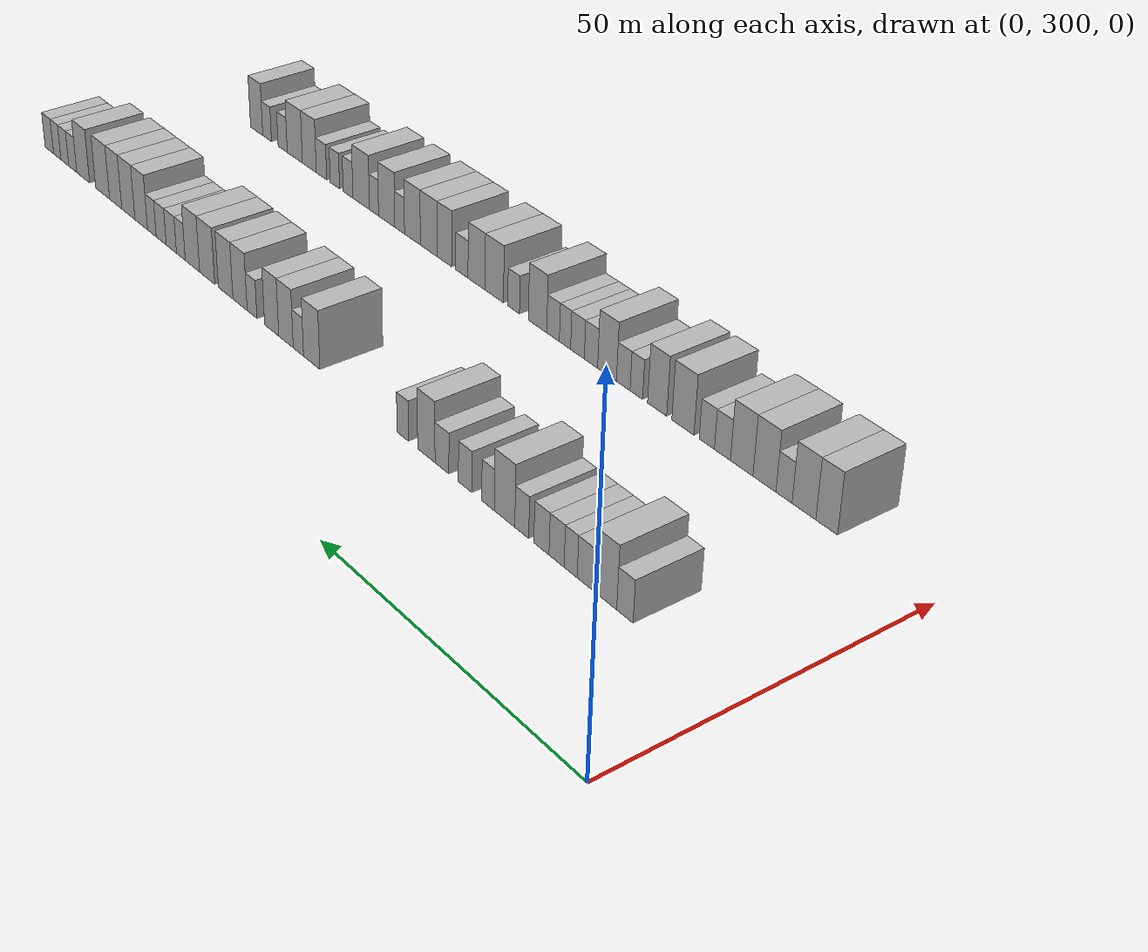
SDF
<sdf version="1.6">
 <world name="default">
  <model name="building_189">
   <static>1</static>
   <pose>25.0000 318.4337 0 0.000000 0.000000 0.000000</pose>
   <link name="link">
    <pose>0 0 3.00 0 0 0</pose>
    <collision name="collision"><geometry><box><size>10.0000 2.8708 6.0000</size></box></geometry></collision>
    <visual name="visual">
     <cast_shadows>0</cast_shadows>
     <geometry><box><size>10.0000 2.8708 6.0000</size></box></geometry>
     <material>
      <script>
       <uri>model://HANNAS_wall/materials/scripts</uri>
       <uri>model://HANNAS_wall/materials/textures</uri>
       <name>vrc/HANNAS_wall</name>
      </script>
     </material>
    </visual>
   </link>
  </model>
  <model name="building_190">
   <static>1</static>
   <pose>25.0000 321.9650 0 0.000000 0.000000 0.000000</pose>
   <link name="link">
    <pose>0 0 4.50 0 0 0</pose>
    <collision name="collision"><geometry><box><size>10.0000 4.1919 9.0000</size></box></geometry></collision>
    <visual name="visual">
     <cast_shadows>0</cast_shadows>
     <geometry><box><size>10.0000 4.1919 9.0000</size></box></geometry>
     <material>
      <script>
       <uri>model://HANNAS_wall/materials/scripts</uri>
       <uri>model://HANNAS_wall/materials/textures</uri>
       <name>vrc/HANNAS_wall</name>
      </script>
     </material>
    </visual>
   </link>
  </model>
  <model name="building_191">
   <static>1</static>
   <pose>25.0000 325.5330 0 0.000000 0.000000 0.000000</pose>
   <link name="link">
    <pose>0 0 3.00 0 0 0</pose>
    <collision name="collision"><geometry><box><size>10.0000 2.9439 6.0000</size></box></geometry></collision>
    <visual name="visual">
     <cast_shadows>0</cast_shadows>
     <geometry><box><size>10.0000 2.9439 6.0000</size></box></geometry>
     <material>
      <script>
       <uri>model://HANNAS_wall/materials/scripts</uri>
       <uri>model://HANNAS_wall/materials/textures</uri>
       <name>vrc/HANNAS_wall</name>
      </script>
     </material>
    </visual>
   </link>
  </model>
  <model name="building_192">
   <static>1</static>
   <pose>25.0000 328.2168 0 0.000000 0.000000 0.000000</pose>
   <link name="link">
    <pose>0 0 3.00 0 0 0</pose>
    <collision name="collision"><geometry><box><size>10.0000 2.4237 6.0000</size></box></geometry></collision>
    <visual name="visual">
     <cast_shadows>0</cast_shadows>
     <geometry><box><size>10.0000 2.4237 6.0000</size></box></geometry>
     <material>
      <script>
       <uri>model://HANNAS_wall/materials/scripts</uri>
       <uri>model://HANNAS_wall/materials/textures</uri>
       <name>vrc/HANNAS_wall</name>
      </script>
     </material>
    </visual>
   </link>
  </model>
  <model name="building_193">
   <static>1</static>
   <pose>25.0000 330.8459 0 0.000000 0.000000 0.000000</pose>
   <link name="link">
    <pose>0 0 3.00 0 0 0</pose>
    <collision name="collision"><geometry><box><size>10.0000 2.8345 6.0000</size></box></geometry></collision>
    <visual name="visual">
     <cast_shadows>0</cast_shadows>
     <geometry><box><size>10.0000 2.8345 6.0000</size></box></geometry>
     <material>
      <script>
       <uri>model://HANNAS_wall/materials/scripts</uri>
       <uri>model://HANNAS_wall/materials/textures</uri>
       <name>vrc/HANNAS_wall</name>
      </script>
     </material>
    </visual>
   </link>
  </model>
  <model name="building_194">
   <static>1</static>
   <pose>25.0000 333.7128 0 0.000000 0.000000 0.000000</pose>
   <link name="link">
    <pose>0 0 3.00 0 0 0</pose>
    <collision name="collision"><geometry><box><size>10.0000 2.8993 6.0000</size></box></geometry></collision>
    <visual name="visual">
     <cast_shadows>0</cast_shadows>
     <geometry><box><size>10.0000 2.8993 6.0000</size></box></geometry>
     <material>
      <script>
       <uri>model://HANNAS_wall/materials/scripts</uri>
       <uri>model://HANNAS_wall/materials/textures</uri>
       <name>vrc/HANNAS_wall</name>
      </script>
     </material>
    </visual>
   </link>
  </model>
  <model name="building_195">
   <static>1</static>
   <pose>25.0000 337.5150 0 0.000000 0.000000 0.000000</pose>
   <link name="link">
    <pose>0 0 3.00 0 0 0</pose>
    <collision name="collision"><geometry><box><size>10.0000 2.7052 6.0000</size></box></geometry></collision>
    <visual name="visual">
     <cast_shadows>0</cast_shadows>
     <geometry><box><size>10.0000 2.7052 6.0000</size></box></geometry>
     <material>
      <script>
       <uri>model://HANNAS_wall/materials/scripts</uri>
       <uri>model://HANNAS_wall/materials/textures</uri>
       <name>vrc/HANNAS_wall</name>
      </script>
     </material>
    </visual>
   </link>
  </model>
  <model name="building_196">
   <static>1</static>
   <pose>25.0000 340.9067 0 0.000000 0.000000 0.000000</pose>
   <link name="link">
    <pose>0 0 4.50 0 0 0</pose>
    <collision name="collision"><geometry><box><size>10.0000 4.0783 9.0000</size></box></geometry></collision>
    <visual name="visual">
     <cast_shadows>0</cast_shadows>
     <geometry><box><size>10.0000 4.0783 9.0000</size></box></geometry>
     <material>
      <script>
       <uri>model://HANNAS_wall/materials/scripts</uri>
       <uri>model://HANNAS_wall/materials/textures</uri>
       <name>vrc/HANNAS_wall</name>
      </script>
     </material>
    </visual>
   </link>
  </model>
  <model name="building_197">
   <static>1</static>
   <pose>25.0000 344.2102 0 0.000000 0.000000 0.000000</pose>
   <link name="link">
    <pose>0 0 3.00 0 0 0</pose>
    <collision name="collision"><geometry><box><size>10.0000 2.5286 6.0000</size></box></geometry></collision>
    <visual name="visual">
     <cast_shadows>0</cast_shadows>
     <geometry><box><size>10.0000 2.5286 6.0000</size></box></geometry>
     <material>
      <script>
       <uri>model://HANNAS_wall/materials/scripts</uri>
       <uri>model://HANNAS_wall/materials/textures</uri>
       <name>vrc/HANNAS_wall</name>
      </script>
     </material>
    </visual>
   </link>
  </model>
  <model name="building_198">
   <static>1</static>
   <pose>25.0000 348.8755 0 0.000000 0.000000 0.000000</pose>
   <link name="link">
    <pose>0 0 3.00 0 0 0</pose>
    <collision name="collision"><geometry><box><size>10.0000 2.8020 6.0000</size></box></geometry></collision>
    <visual name="visual">
     <cast_shadows>0</cast_shadows>
     <geometry><box><size>10.0000 2.8020 6.0000</size></box></geometry>
     <material>
      <script>
       <uri>model://HANNAS_wall/materials/scripts</uri>
       <uri>model://HANNAS_wall/materials/textures</uri>
       <name>vrc/HANNAS_wall</name>
      </script>
     </material>
    </visual>
   </link>
  </model>
  <model name="building_199">
   <static>1</static>
   <pose>25.0000 353.7527 0 0.000000 0.000000 0.000000</pose>
   <link name="link">
    <pose>0 0 3.00 0 0 0</pose>
    <collision name="collision"><geometry><box><size>10.0000 2.9524 6.0000</size></box></geometry></collision>
    <visual name="visual">
     <cast_shadows>0</cast_shadows>
     <geometry><box><size>10.0000 2.9524 6.0000</size></box></geometry>
     <material>
      <script>
       <uri>model://HANNAS_wall/materials/scripts</uri>
       <uri>model://HANNAS_wall/materials/textures</uri>
       <name>vrc/HANNAS_wall</name>
      </script>
     </material>
    </visual>
   </link>
  </model>
  <model name="building_200">
   <static>1</static>
   <pose>25.0000 357.1051 0 0.000000 0.000000 0.000000</pose>
   <link name="link">
    <pose>0 0 4.50 0 0 0</pose>
    <collision name="collision"><geometry><box><size>10.0000 3.7524 9.0000</size></box></geometry></collision>
    <visual name="visual">
     <cast_shadows>0</cast_shadows>
     <geometry><box><size>10.0000 3.7524 9.0000</size></box></geometry>
     <material>
      <script>
       <uri>model://HANNAS_wall/materials/scripts</uri>
       <uri>model://HANNAS_wall/materials/textures</uri>
       <name>vrc/HANNAS_wall</name>
      </script>
     </material>
    </visual>
   </link>
  </model>
  <model name="building_201">
   <static>1</static>
   <pose>25.0000 362.2607 0 0.000000 0.000000 0.000000</pose>
   <link name="link">
    <pose>0 0 3.00 0 0 0</pose>
    <collision name="collision"><geometry><box><size>10.0000 2.5589 6.0000</size></box></geometry></collision>
    <visual name="visual">
     <cast_shadows>0</cast_shadows>
     <geometry><box><size>10.0000 2.5589 6.0000</size></box></geometry>
     <material>
      <script>
       <uri>model://HANNAS_wall/materials/scripts</uri>
       <uri>model://HANNAS_wall/materials/textures</uri>
       <name>vrc/HANNAS_wall</name>
      </script>
     </material>
    </visual>
   </link>
  </model>
  <model name="building_202">
   <static>1</static>
   <pose>25.0000 383.5789 0 0.000000 0.000000 0.000000</pose>
   <link name="link">
    <pose>0 0 4.50 0 0 0</pose>
    <collision name="collision"><geometry><box><size>10.0000 4.0258 9.0000</size></box></geometry></collision>
    <visual name="visual">
     <cast_shadows>0</cast_shadows>
     <geometry><box><size>10.0000 4.0258 9.0000</size></box></geometry>
     <material>
      <script>
       <uri>model://HANNAS_wall/materials/scripts</uri>
       <uri>model://HANNAS_wall/materials/textures</uri>
       <name>vrc/HANNAS_wall</name>
      </script>
     </material>
    </visual>
   </link>
  </model>
  <model name="building_203">
   <static>1</static>
   <pose>25.0000 386.8827 0 0.000000 0.000000 0.000000</pose>
   <link name="link">
    <pose>0 0 3.00 0 0 0</pose>
    <collision name="collision"><geometry><box><size>10.0000 2.5819 6.0000</size></box></geometry></collision>
    <visual name="visual">
     <cast_shadows>0</cast_shadows>
     <geometry><box><size>10.0000 2.5819 6.0000</size></box></geometry>
     <material>
      <script>
       <uri>model://HANNAS_wall/materials/scripts</uri>
       <uri>model://HANNAS_wall/materials/textures</uri>
       <name>vrc/HANNAS_wall</name>
      </script>
     </material>
    </visual>
   </link>
  </model>
  <model name="building_204">
   <static>1</static>
   <pose>25.0000 390.0121 0 0.000000 0.000000 0.000000</pose>
   <link name="link">
    <pose>0 0 4.50 0 0 0</pose>
    <collision name="collision"><geometry><box><size>10.0000 3.6768 9.0000</size></box></geometry></collision>
    <visual name="visual">
     <cast_shadows>0</cast_shadows>
     <geometry><box><size>10.0000 3.6768 9.0000</size></box></geometry>
     <material>
      <script>
       <uri>model://HANNAS_wall/materials/scripts</uri>
       <uri>model://HANNAS_wall/materials/textures</uri>
       <name>vrc/HANNAS_wall</name>
      </script>
     </material>
    </visual>
   </link>
  </model>
  <model name="building_205">
   <static>1</static>
   <pose>25.0000 393.6832 0 0.000000 0.000000 0.000000</pose>
   <link name="link">
    <pose>0 0 4.50 0 0 0</pose>
    <collision name="collision"><geometry><box><size>10.0000 3.6654 9.0000</size></box></geometry></collision>
    <visual name="visual">
     <cast_shadows>0</cast_shadows>
     <geometry><box><size>10.0000 3.6654 9.0000</size></box></geometry>
     <material>
      <script>
       <uri>model://HANNAS_wall/materials/scripts</uri>
       <uri>model://HANNAS_wall/materials/textures</uri>
       <name>vrc/HANNAS_wall</name>
      </script>
     </material>
    </visual>
   </link>
  </model>
  <model name="building_206">
   <static>1</static>
   <pose>25.0000 398.8147 0 0.000000 0.000000 0.000000</pose>
   <link name="link">
    <pose>0 0 3.00 0 0 0</pose>
    <collision name="collision"><geometry><box><size>10.0000 2.5975 6.0000</size></box></geometry></collision>
    <visual name="visual">
     <cast_shadows>0</cast_shadows>
     <geometry><box><size>10.0000 2.5975 6.0000</size></box></geometry>
     <material>
      <script>
       <uri>model://HANNAS_wall/materials/scripts</uri>
       <uri>model://HANNAS_wall/materials/textures</uri>
       <name>vrc/HANNAS_wall</name>
      </script>
     </material>
    </visual>
   </link>
  </model>
  <model name="building_207">
   <static>1</static>
   <pose>25.0000 402.0269 0 0.000000 0.000000 0.000000</pose>
   <link name="link">
    <pose>0 0 4.50 0 0 0</pose>
    <collision name="collision"><geometry><box><size>10.0000 3.8268 9.0000</size></box></geometry></collision>
    <visual name="visual">
     <cast_shadows>0</cast_shadows>
     <geometry><box><size>10.0000 3.8268 9.0000</size></box></geometry>
     <material>
      <script>
       <uri>model://HANNAS_wall/materials/scripts</uri>
       <uri>model://HANNAS_wall/materials/textures</uri>
       <name>vrc/HANNAS_wall</name>
      </script>
     </material>
    </visual>
   </link>
  </model>
  <model name="building_208">
   <static>1</static>
   <pose>25.0000 405.9341 0 0.000000 0.000000 0.000000</pose>
   <link name="link">
    <pose>0 0 4.50 0 0 0</pose>
    <collision name="collision"><geometry><box><size>10.0000 3.9876 9.0000</size></box></geometry></collision>
    <visual name="visual">
     <cast_shadows>0</cast_shadows>
     <geometry><box><size>10.0000 3.9876 9.0000</size></box></geometry>
     <material>
      <script>
       <uri>model://HANNAS_wall/materials/scripts</uri>
       <uri>model://HANNAS_wall/materials/textures</uri>
       <name>vrc/HANNAS_wall</name>
      </script>
     </material>
    </visual>
   </link>
  </model>
  <model name="building_209">
   <static>1</static>
   <pose>25.0000 411.0460 0 0.000000 0.000000 0.000000</pose>
   <link name="link">
    <pose>0 0 4.50 0 0 0</pose>
    <collision name="collision"><geometry><box><size>10.0000 4.2361 9.0000</size></box></geometry></collision>
    <visual name="visual">
     <cast_shadows>0</cast_shadows>
     <geometry><box><size>10.0000 4.2361 9.0000</size></box></geometry>
     <material>
      <script>
       <uri>model://HANNAS_wall/materials/scripts</uri>
       <uri>model://HANNAS_wall/materials/textures</uri>
       <name>vrc/HANNAS_wall</name>
      </script>
     </material>
    </visual>
   </link>
  </model>
  <model name="building_210">
   <static>1</static>
   <pose>25.0000 415.2217 0 0.000000 0.000000 0.000000</pose>
   <link name="link">
    <pose>0 0 4.50 0 0 0</pose>
    <collision name="collision"><geometry><box><size>10.0000 4.1153 9.0000</size></box></geometry></collision>
    <visual name="visual">
     <cast_shadows>0</cast_shadows>
     <geometry><box><size>10.0000 4.1153 9.0000</size></box></geometry>
     <material>
      <script>
       <uri>model://HANNAS_wall/materials/scripts</uri>
       <uri>model://HANNAS_wall/materials/textures</uri>
       <name>vrc/HANNAS_wall</name>
      </script>
     </material>
    </visual>
   </link>
  </model>
  <model name="building_211">
   <static>1</static>
   <pose>25.0000 418.5542 0 0.000000 0.000000 0.000000</pose>
   <link name="link">
    <pose>0 0 3.00 0 0 0</pose>
    <collision name="collision"><geometry><box><size>10.0000 2.5498 6.0000</size></box></geometry></collision>
    <visual name="visual">
     <cast_shadows>0</cast_shadows>
     <geometry><box><size>10.0000 2.5498 6.0000</size></box></geometry>
     <material>
      <script>
       <uri>model://HANNAS_wall/materials/scripts</uri>
       <uri>model://HANNAS_wall/materials/textures</uri>
       <name>vrc/HANNAS_wall</name>
      </script>
     </material>
    </visual>
   </link>
  </model>
  <model name="building_212">
   <static>1</static>
   <pose>25.0000 421.3261 0 0.000000 0.000000 0.000000</pose>
   <link name="link">
    <pose>0 0 3.00 0 0 0</pose>
    <collision name="collision"><geometry><box><size>10.0000 2.9939 6.0000</size></box></geometry></collision>
    <visual name="visual">
     <cast_shadows>0</cast_shadows>
     <geometry><box><size>10.0000 2.9939 6.0000</size></box></geometry>
     <material>
      <script>
       <uri>model://HANNAS_wall/materials/scripts</uri>
       <uri>model://HANNAS_wall/materials/textures</uri>
       <name>vrc/HANNAS_wall</name>
      </script>
     </material>
    </visual>
   </link>
  </model>
  <model name="building_213">
   <static>1</static>
   <pose>25.0000 424.3215 0 0.000000 0.000000 0.000000</pose>
   <link name="link">
    <pose>0 0 3.00 0 0 0</pose>
    <collision name="collision"><geometry><box><size>10.0000 2.9971 6.0000</size></box></geometry></collision>
    <visual name="visual">
     <cast_shadows>0</cast_shadows>
     <geometry><box><size>10.0000 2.9971 6.0000</size></box></geometry>
     <material>
      <script>
       <uri>model://HANNAS_wall/materials/scripts</uri>
       <uri>model://HANNAS_wall/materials/textures</uri>
       <name>vrc/HANNAS_wall</name>
      </script>
     </material>
    </visual>
   </link>
  </model>
  <model name="building_214">
   <static>1</static>
   <pose>25.0000 427.1105 0 0.000000 0.000000 0.000000</pose>
   <link name="link">
    <pose>0 0 3.00 0 0 0</pose>
    <collision name="collision"><geometry><box><size>10.0000 2.5808 6.0000</size></box></geometry></collision>
    <visual name="visual">
     <cast_shadows>0</cast_shadows>
     <geometry><box><size>10.0000 2.5808 6.0000</size></box></geometry>
     <material>
      <script>
       <uri>model://HANNAS_wall/materials/scripts</uri>
       <uri>model://HANNAS_wall/materials/textures</uri>
       <name>vrc/HANNAS_wall</name>
      </script>
     </material>
    </visual>
   </link>
  </model>
  <model name="building_215">
   <static>1</static>
   <pose>25.0000 430.3378 0 0.000000 0.000000 0.000000</pose>
   <link name="link">
    <pose>0 0 4.50 0 0 0</pose>
    <collision name="collision"><geometry><box><size>10.0000 3.8738 9.0000</size></box></geometry></collision>
    <visual name="visual">
     <cast_shadows>0</cast_shadows>
     <geometry><box><size>10.0000 3.8738 9.0000</size></box></geometry>
     <material>
      <script>
       <uri>model://HANNAS_wall/materials/scripts</uri>
       <uri>model://HANNAS_wall/materials/textures</uri>
       <name>vrc/HANNAS_wall</name>
      </script>
     </material>
    </visual>
   </link>
  </model>
  <model name="building_216">
   <static>1</static>
   <pose>25.0000 434.3183 0 0.000000 0.000000 0.000000</pose>
   <link name="link">
    <pose>0 0 4.50 0 0 0</pose>
    <collision name="collision"><geometry><box><size>10.0000 4.0874 9.0000</size></box></geometry></collision>
    <visual name="visual">
     <cast_shadows>0</cast_shadows>
     <geometry><box><size>10.0000 4.0874 9.0000</size></box></geometry>
     <material>
      <script>
       <uri>model://HANNAS_wall/materials/scripts</uri>
       <uri>model://HANNAS_wall/materials/textures</uri>
       <name>vrc/HANNAS_wall</name>
      </script>
     </material>
    </visual>
   </link>
  </model>
  <model name="building_217">
   <static>1</static>
   <pose>25.0000 438.2913 0 0.000000 0.000000 0.000000</pose>
   <link name="link">
    <pose>0 0 4.50 0 0 0</pose>
    <collision name="collision"><geometry><box><size>10.0000 3.8585 9.0000</size></box></geometry></collision>
    <visual name="visual">
     <cast_shadows>0</cast_shadows>
     <geometry><box><size>10.0000 3.8585 9.0000</size></box></geometry>
     <material>
      <script>
       <uri>model://HANNAS_wall/materials/scripts</uri>
       <uri>model://HANNAS_wall/materials/textures</uri>
       <name>vrc/HANNAS_wall</name>
      </script>
     </material>
    </visual>
   </link>
  </model>
  <model name="building_218">
   <static>1</static>
   <pose>25.0000 442.4471 0 0.000000 0.000000 0.000000</pose>
   <link name="link">
    <pose>0 0 4.50 0 0 0</pose>
    <collision name="collision"><geometry><box><size>10.0000 4.4532 9.0000</size></box></geometry></collision>
    <visual name="visual">
     <cast_shadows>0</cast_shadows>
     <geometry><box><size>10.0000 4.4532 9.0000</size></box></geometry>
     <material>
      <script>
       <uri>model://HANNAS_wall/materials/scripts</uri>
       <uri>model://HANNAS_wall/materials/textures</uri>
       <name>vrc/HANNAS_wall</name>
      </script>
     </material>
    </visual>
   </link>
  </model>
  <model name="building_219">
   <static>1</static>
   <pose>25.0000 448.7898 0 0.000000 0.000000 0.000000</pose>
   <link name="link">
    <pose>0 0 4.50 0 0 0</pose>
    <collision name="collision"><geometry><box><size>10.0000 4.2321 9.0000</size></box></geometry></collision>
    <visual name="visual">
     <cast_shadows>0</cast_shadows>
     <geometry><box><size>10.0000 4.2321 9.0000</size></box></geometry>
     <material>
      <script>
       <uri>model://HANNAS_wall/materials/scripts</uri>
       <uri>model://HANNAS_wall/materials/textures</uri>
       <name>vrc/HANNAS_wall</name>
      </script>
     </material>
    </visual>
   </link>
  </model>
  <model name="building_220">
   <static>1</static>
   <pose>25.0000 452.2469 0 0.000000 0.000000 0.000000</pose>
   <link name="link">
    <pose>0 0 3.00 0 0 0</pose>
    <collision name="collision"><geometry><box><size>10.0000 2.6820 6.0000</size></box></geometry></collision>
    <visual name="visual">
     <cast_shadows>0</cast_shadows>
     <geometry><box><size>10.0000 2.6820 6.0000</size></box></geometry>
     <material>
      <script>
       <uri>model://HANNAS_wall/materials/scripts</uri>
       <uri>model://HANNAS_wall/materials/textures</uri>
       <name>vrc/HANNAS_wall</name>
      </script>
     </material>
    </visual>
   </link>
  </model>
  <model name="building_221">
   <static>1</static>
   <pose>25.0000 454.9097 0 0.000000 0.000000 0.000000</pose>
   <link name="link">
    <pose>0 0 3.00 0 0 0</pose>
    <collision name="collision"><geometry><box><size>10.0000 2.6437 6.0000</size></box></geometry></collision>
    <visual name="visual">
     <cast_shadows>0</cast_shadows>
     <geometry><box><size>10.0000 2.6437 6.0000</size></box></geometry>
     <material>
      <script>
       <uri>model://HANNAS_wall/materials/scripts</uri>
       <uri>model://HANNAS_wall/materials/textures</uri>
       <name>vrc/HANNAS_wall</name>
      </script>
     </material>
    </visual>
   </link>
  </model>
  <model name="building_222">
   <static>1</static>
   <pose>25.0000 457.4838 0 0.000000 0.000000 0.000000</pose>
   <link name="link">
    <pose>0 0 3.00 0 0 0</pose>
    <collision name="collision"><geometry><box><size>10.0000 2.5046 6.0000</size></box></geometry></collision>
    <visual name="visual">
     <cast_shadows>0</cast_shadows>
     <geometry><box><size>10.0000 2.5046 6.0000</size></box></geometry>
     <material>
      <script>
       <uri>model://HANNAS_wall/materials/scripts</uri>
       <uri>model://HANNAS_wall/materials/textures</uri>
       <name>vrc/HANNAS_wall</name>
      </script>
     </material>
    </visual>
   </link>
  </model>
  <model name="building_223">
   <static>1</static>
   <pose>25.0000 460.1944 0 0.000000 0.000000 0.000000</pose>
   <link name="link">
    <pose>0 0 3.00 0 0 0</pose>
    <collision name="collision"><geometry><box><size>10.0000 2.9165 6.0000</size></box></geometry></collision>
    <visual name="visual">
     <cast_shadows>0</cast_shadows>
     <geometry><box><size>10.0000 2.9165 6.0000</size></box></geometry>
     <material>
      <script>
       <uri>model://HANNAS_wall/materials/scripts</uri>
       <uri>model://HANNAS_wall/materials/textures</uri>
       <name>vrc/HANNAS_wall</name>
      </script>
     </material>
    </visual>
   </link>
  </model>
  <model name="building_407">
   <static>1</static>
   <pose>55.0000 317.4968 0 0.000000 0.000000 0.000000</pose>
   <link name="link">
    <pose>0 0 4.50 0 0 0</pose>
    <collision name="collision"><geometry><box><size>10.0000 3.6784 9.0000</size></box></geometry></collision>
    <visual name="visual">
     <cast_shadows>0</cast_shadows>
     <geometry><box><size>10.0000 3.6784 9.0000</size></box></geometry>
     <material>
      <script>
       <uri>model://HANNAS_wall/materials/scripts</uri>
       <uri>model://HANNAS_wall/materials/textures</uri>
       <name>vrc/HANNAS_wall</name>
      </script>
     </material>
    </visual>
   </link>
  </model>
  <model name="building_408">
   <static>1</static>
   <pose>55.0000 321.3840 0 0.000000 0.000000 0.000000</pose>
   <link name="link">
    <pose>0 0 4.50 0 0 0</pose>
    <collision name="collision"><geometry><box><size>10.0000 4.0959 9.0000</size></box></geometry></collision>
    <visual name="visual">
     <cast_shadows>0</cast_shadows>
     <geometry><box><size>10.0000 4.0959 9.0000</size></box></geometry>
     <material>
      <script>
       <uri>model://HANNAS_wall/materials/scripts</uri>
       <uri>model://HANNAS_wall/materials/textures</uri>
       <name>vrc/HANNAS_wall</name>
      </script>
     </material>
    </visual>
   </link>
  </model>
  <model name="building_409">
   <static>1</static>
   <pose>55.0000 324.8344 0 0.000000 0.000000 0.000000</pose>
   <link name="link">
    <pose>0 0 3.00 0 0 0</pose>
    <collision name="collision"><geometry><box><size>10.0000 2.8050 6.0000</size></box></geometry></collision>
    <visual name="visual">
     <cast_shadows>0</cast_shadows>
     <geometry><box><size>10.0000 2.8050 6.0000</size></box></geometry>
     <material>
      <script>
       <uri>model://HANNAS_wall/materials/scripts</uri>
       <uri>model://HANNAS_wall/materials/textures</uri>
       <name>vrc/HANNAS_wall</name>
      </script>
     </material>
    </visual>
   </link>
  </model>
  <model name="building_410">
   <static>1</static>
   <pose>55.0000 328.2939 0 0.000000 0.000000 0.000000</pose>
   <link name="link">
    <pose>0 0 4.50 0 0 0</pose>
    <collision name="collision"><geometry><box><size>10.0000 4.1139 9.0000</size></box></geometry></collision>
    <visual name="visual">
     <cast_shadows>0</cast_shadows>
     <geometry><box><size>10.0000 4.1139 9.0000</size></box></geometry>
     <material>
      <script>
       <uri>model://HANNAS_wall/materials/scripts</uri>
       <uri>model://HANNAS_wall/materials/textures</uri>
       <name>vrc/HANNAS_wall</name>
      </script>
     </material>
    </visual>
   </link>
  </model>
  <model name="building_411">
   <static>1</static>
   <pose>55.0000 332.4077 0 0.000000 0.000000 0.000000</pose>
   <link name="link">
    <pose>0 0 4.50 0 0 0</pose>
    <collision name="collision"><geometry><box><size>10.0000 4.1136 9.0000</size></box></geometry></collision>
    <visual name="visual">
     <cast_shadows>0</cast_shadows>
     <geometry><box><size>10.0000 4.1136 9.0000</size></box></geometry>
     <material>
      <script>
       <uri>model://HANNAS_wall/materials/scripts</uri>
       <uri>model://HANNAS_wall/materials/textures</uri>
       <name>vrc/HANNAS_wall</name>
      </script>
     </material>
    </visual>
   </link>
  </model>
  <model name="building_412">
   <static>1</static>
   <pose>55.0000 335.9451 0 0.000000 0.000000 0.000000</pose>
   <link name="link">
    <pose>0 0 3.00 0 0 0</pose>
    <collision name="collision"><geometry><box><size>10.0000 2.9613 6.0000</size></box></geometry></collision>
    <visual name="visual">
     <cast_shadows>0</cast_shadows>
     <geometry><box><size>10.0000 2.9613 6.0000</size></box></geometry>
     <material>
      <script>
       <uri>model://HANNAS_wall/materials/scripts</uri>
       <uri>model://HANNAS_wall/materials/textures</uri>
       <name>vrc/HANNAS_wall</name>
      </script>
     </material>
    </visual>
   </link>
  </model>
  <model name="building_413">
   <static>1</static>
   <pose>55.0000 338.8578 0 0.000000 0.000000 0.000000</pose>
   <link name="link">
    <pose>0 0 3.00 0 0 0</pose>
    <collision name="collision"><geometry><box><size>10.0000 2.8639 6.0000</size></box></geometry></collision>
    <visual name="visual">
     <cast_shadows>0</cast_shadows>
     <geometry><box><size>10.0000 2.8639 6.0000</size></box></geometry>
     <material>
      <script>
       <uri>model://HANNAS_wall/materials/scripts</uri>
       <uri>model://HANNAS_wall/materials/textures</uri>
       <name>vrc/HANNAS_wall</name>
      </script>
     </material>
    </visual>
   </link>
  </model>
  <model name="building_414">
   <static>1</static>
   <pose>55.0000 343.4322 0 0.000000 0.000000 0.000000</pose>
   <link name="link">
    <pose>0 0 4.50 0 0 0</pose>
    <collision name="collision"><geometry><box><size>10.0000 4.2850 9.0000</size></box></geometry></collision>
    <visual name="visual">
     <cast_shadows>0</cast_shadows>
     <geometry><box><size>10.0000 4.2850 9.0000</size></box></geometry>
     <material>
      <script>
       <uri>model://HANNAS_wall/materials/scripts</uri>
       <uri>model://HANNAS_wall/materials/textures</uri>
       <name>vrc/HANNAS_wall</name>
      </script>
     </material>
    </visual>
   </link>
  </model>
  <model name="building_415">
   <static>1</static>
   <pose>55.0000 348.4700 0 0.000000 0.000000 0.000000</pose>
   <link name="link">
    <pose>0 0 4.50 0 0 0</pose>
    <collision name="collision"><geometry><box><size>10.0000 3.7905 9.0000</size></box></geometry></collision>
    <visual name="visual">
     <cast_shadows>0</cast_shadows>
     <geometry><box><size>10.0000 3.7905 9.0000</size></box></geometry>
     <material>
      <script>
       <uri>model://HANNAS_wall/materials/scripts</uri>
       <uri>model://HANNAS_wall/materials/textures</uri>
       <name>vrc/HANNAS_wall</name>
      </script>
     </material>
    </visual>
   </link>
  </model>
  <model name="building_416">
   <static>1</static>
   <pose>55.0000 352.6273 0 0.000000 0.000000 0.000000</pose>
   <link name="link">
    <pose>0 0 3.00 0 0 0</pose>
    <collision name="collision"><geometry><box><size>10.0000 2.5242 6.0000</size></box></geometry></collision>
    <visual name="visual">
     <cast_shadows>0</cast_shadows>
     <geometry><box><size>10.0000 2.5242 6.0000</size></box></geometry>
     <material>
      <script>
       <uri>model://HANNAS_wall/materials/scripts</uri>
       <uri>model://HANNAS_wall/materials/textures</uri>
       <name>vrc/HANNAS_wall</name>
      </script>
     </material>
    </visual>
   </link>
  </model>
  <model name="building_417">
   <static>1</static>
   <pose>55.0000 355.2856 0 0.000000 0.000000 0.000000</pose>
   <link name="link">
    <pose>0 0 3.00 0 0 0</pose>
    <collision name="collision"><geometry><box><size>10.0000 2.7924 6.0000</size></box></geometry></collision>
    <visual name="visual">
     <cast_shadows>0</cast_shadows>
     <geometry><box><size>10.0000 2.7924 6.0000</size></box></geometry>
     <material>
      <script>
       <uri>model://HANNAS_wall/materials/scripts</uri>
       <uri>model://HANNAS_wall/materials/textures</uri>
       <name>vrc/HANNAS_wall</name>
      </script>
     </material>
    </visual>
   </link>
  </model>
  <model name="building_418">
   <static>1</static>
   <pose>55.0000 358.6406 0 0.000000 0.000000 0.000000</pose>
   <link name="link">
    <pose>0 0 4.50 0 0 0</pose>
    <collision name="collision"><geometry><box><size>10.0000 3.9176 9.0000</size></box></geometry></collision>
    <visual name="visual">
     <cast_shadows>0</cast_shadows>
     <geometry><box><size>10.0000 3.9176 9.0000</size></box></geometry>
     <material>
      <script>
       <uri>model://HANNAS_wall/materials/scripts</uri>
       <uri>model://HANNAS_wall/materials/textures</uri>
       <name>vrc/HANNAS_wall</name>
      </script>
     </material>
    </visual>
   </link>
  </model>
  <model name="building_419">
   <static>1</static>
   <pose>55.0000 362.0082 0 0.000000 0.000000 0.000000</pose>
   <link name="link">
    <pose>0 0 3.00 0 0 0</pose>
    <collision name="collision"><geometry><box><size>10.0000 2.8176 6.0000</size></box></geometry></collision>
    <visual name="visual">
     <cast_shadows>0</cast_shadows>
     <geometry><box><size>10.0000 2.8176 6.0000</size></box></geometry>
     <material>
      <script>
       <uri>model://HANNAS_wall/materials/scripts</uri>
       <uri>model://HANNAS_wall/materials/textures</uri>
       <name>vrc/HANNAS_wall</name>
      </script>
     </material>
    </visual>
   </link>
  </model>
  <model name="building_420">
   <static>1</static>
   <pose>55.0000 364.8864 0 0.000000 0.000000 0.000000</pose>
   <link name="link">
    <pose>0 0 3.00 0 0 0</pose>
    <collision name="collision"><geometry><box><size>10.0000 2.9387 6.0000</size></box></geometry></collision>
    <visual name="visual">
     <cast_shadows>0</cast_shadows>
     <geometry><box><size>10.0000 2.9387 6.0000</size></box></geometry>
     <material>
      <script>
       <uri>model://HANNAS_wall/materials/scripts</uri>
       <uri>model://HANNAS_wall/materials/textures</uri>
       <name>vrc/HANNAS_wall</name>
      </script>
     </material>
    </visual>
   </link>
  </model>
  <model name="building_421">
   <static>1</static>
   <pose>55.0000 367.5750 0 0.000000 0.000000 0.000000</pose>
   <link name="link">
    <pose>0 0 3.00 0 0 0</pose>
    <collision name="collision"><geometry><box><size>10.0000 2.4386 6.0000</size></box></geometry></collision>
    <visual name="visual">
     <cast_shadows>0</cast_shadows>
     <geometry><box><size>10.0000 2.4386 6.0000</size></box></geometry>
     <material>
      <script>
       <uri>model://HANNAS_wall/materials/scripts</uri>
       <uri>model://HANNAS_wall/materials/textures</uri>
       <name>vrc/HANNAS_wall</name>
      </script>
     </material>
    </visual>
   </link>
  </model>
  <model name="building_422">
   <static>1</static>
   <pose>55.0000 370.1890 0 0.000000 0.000000 0.000000</pose>
   <link name="link">
    <pose>0 0 3.00 0 0 0</pose>
    <collision name="collision"><geometry><box><size>10.0000 2.7894 6.0000</size></box></geometry></collision>
    <visual name="visual">
     <cast_shadows>0</cast_shadows>
     <geometry><box><size>10.0000 2.7894 6.0000</size></box></geometry>
     <material>
      <script>
       <uri>model://HANNAS_wall/materials/scripts</uri>
       <uri>model://HANNAS_wall/materials/textures</uri>
       <name>vrc/HANNAS_wall</name>
      </script>
     </material>
    </visual>
   </link>
  </model>
  <model name="building_423">
   <static>1</static>
   <pose>55.0000 373.6388 0 0.000000 0.000000 0.000000</pose>
   <link name="link">
    <pose>0 0 4.50 0 0 0</pose>
    <collision name="collision"><geometry><box><size>10.0000 4.1100 9.0000</size></box></geometry></collision>
    <visual name="visual">
     <cast_shadows>0</cast_shadows>
     <geometry><box><size>10.0000 4.1100 9.0000</size></box></geometry>
     <material>
      <script>
       <uri>model://HANNAS_wall/materials/scripts</uri>
       <uri>model://HANNAS_wall/materials/textures</uri>
       <name>vrc/HANNAS_wall</name>
      </script>
     </material>
    </visual>
   </link>
  </model>
  <model name="building_424">
   <static>1</static>
   <pose>55.0000 379.0417 0 0.000000 0.000000 0.000000</pose>
   <link name="link">
    <pose>0 0 3.00 0 0 0</pose>
    <collision name="collision"><geometry><box><size>10.0000 2.6958 6.0000</size></box></geometry></collision>
    <visual name="visual">
     <cast_shadows>0</cast_shadows>
     <geometry><box><size>10.0000 2.6958 6.0000</size></box></geometry>
     <material>
      <script>
       <uri>model://HANNAS_wall/materials/scripts</uri>
       <uri>model://HANNAS_wall/materials/textures</uri>
       <name>vrc/HANNAS_wall</name>
      </script>
     </material>
    </visual>
   </link>
  </model>
  <model name="building_425">
   <static>1</static>
   <pose>55.0000 383.5438 0 0.000000 0.000000 0.000000</pose>
   <link name="link">
    <pose>0 0 4.50 0 0 0</pose>
    <collision name="collision"><geometry><box><size>10.0000 4.3084 9.0000</size></box></geometry></collision>
    <visual name="visual">
     <cast_shadows>0</cast_shadows>
     <geometry><box><size>10.0000 4.3084 9.0000</size></box></geometry>
     <material>
      <script>
       <uri>model://HANNAS_wall/materials/scripts</uri>
       <uri>model://HANNAS_wall/materials/textures</uri>
       <name>vrc/HANNAS_wall</name>
      </script>
     </material>
    </visual>
   </link>
  </model>
  <model name="building_426">
   <static>1</static>
   <pose>55.0000 387.7202 0 0.000000 0.000000 0.000000</pose>
   <link name="link">
    <pose>0 0 4.50 0 0 0</pose>
    <collision name="collision"><geometry><box><size>10.0000 4.0444 9.0000</size></box></geometry></collision>
    <visual name="visual">
     <cast_shadows>0</cast_shadows>
     <geometry><box><size>10.0000 4.0444 9.0000</size></box></geometry>
     <material>
      <script>
       <uri>model://HANNAS_wall/materials/scripts</uri>
       <uri>model://HANNAS_wall/materials/textures</uri>
       <name>vrc/HANNAS_wall</name>
      </script>
     </material>
    </visual>
   </link>
  </model>
  <model name="building_427">
   <static>1</static>
   <pose>55.0000 391.2237 0 0.000000 0.000000 0.000000</pose>
   <link name="link">
    <pose>0 0 3.00 0 0 0</pose>
    <collision name="collision"><geometry><box><size>10.0000 2.9625 6.0000</size></box></geometry></collision>
    <visual name="visual">
     <cast_shadows>0</cast_shadows>
     <geometry><box><size>10.0000 2.9625 6.0000</size></box></geometry>
     <material>
      <script>
       <uri>model://HANNAS_wall/materials/scripts</uri>
       <uri>model://HANNAS_wall/materials/textures</uri>
       <name>vrc/HANNAS_wall</name>
      </script>
     </material>
    </visual>
   </link>
  </model>
  <model name="building_428">
   <static>1</static>
   <pose>55.0000 395.5210 0 0.000000 0.000000 0.000000</pose>
   <link name="link">
    <pose>0 0 4.50 0 0 0</pose>
    <collision name="collision"><geometry><box><size>10.0000 3.6322 9.0000</size></box></geometry></collision>
    <visual name="visual">
     <cast_shadows>0</cast_shadows>
     <geometry><box><size>10.0000 3.6322 9.0000</size></box></geometry>
     <material>
      <script>
       <uri>model://HANNAS_wall/materials/scripts</uri>
       <uri>model://HANNAS_wall/materials/textures</uri>
       <name>vrc/HANNAS_wall</name>
      </script>
     </material>
    </visual>
   </link>
  </model>
  <model name="building_429">
   <static>1</static>
   <pose>55.0000 399.4252 0 0.000000 0.000000 0.000000</pose>
   <link name="link">
    <pose>0 0 4.50 0 0 0</pose>
    <collision name="collision"><geometry><box><size>10.0000 4.1761 9.0000</size></box></geometry></collision>
    <visual name="visual">
     <cast_shadows>0</cast_shadows>
     <geometry><box><size>10.0000 4.1761 9.0000</size></box></geometry>
     <material>
      <script>
       <uri>model://HANNAS_wall/materials/scripts</uri>
       <uri>model://HANNAS_wall/materials/textures</uri>
       <name>vrc/HANNAS_wall</name>
      </script>
     </material>
    </visual>
   </link>
  </model>
  <model name="building_430">
   <static>1</static>
   <pose>55.0000 403.5360 0 0.000000 0.000000 0.000000</pose>
   <link name="link">
    <pose>0 0 4.50 0 0 0</pose>
    <collision name="collision"><geometry><box><size>10.0000 4.0454 9.0000</size></box></geometry></collision>
    <visual name="visual">
     <cast_shadows>0</cast_shadows>
     <geometry><box><size>10.0000 4.0454 9.0000</size></box></geometry>
     <material>
      <script>
       <uri>model://HANNAS_wall/materials/scripts</uri>
       <uri>model://HANNAS_wall/materials/textures</uri>
       <name>vrc/HANNAS_wall</name>
      </script>
     </material>
    </visual>
   </link>
  </model>
  <model name="building_431">
   <static>1</static>
   <pose>55.0000 406.8298 0 0.000000 0.000000 0.000000</pose>
   <link name="link">
    <pose>0 0 3.00 0 0 0</pose>
    <collision name="collision"><geometry><box><size>10.0000 2.5423 6.0000</size></box></geometry></collision>
    <visual name="visual">
     <cast_shadows>0</cast_shadows>
     <geometry><box><size>10.0000 2.5423 6.0000</size></box></geometry>
     <material>
      <script>
       <uri>model://HANNAS_wall/materials/scripts</uri>
       <uri>model://HANNAS_wall/materials/textures</uri>
       <name>vrc/HANNAS_wall</name>
      </script>
     </material>
    </visual>
   </link>
  </model>
  <model name="building_432">
   <static>1</static>
   <pose>55.0000 410.2341 0 0.000000 0.000000 0.000000</pose>
   <link name="link">
    <pose>0 0 4.50 0 0 0</pose>
    <collision name="collision"><geometry><box><size>10.0000 4.2664 9.0000</size></box></geometry></collision>
    <visual name="visual">
     <cast_shadows>0</cast_shadows>
     <geometry><box><size>10.0000 4.2664 9.0000</size></box></geometry>
     <material>
      <script>
       <uri>model://HANNAS_wall/materials/scripts</uri>
       <uri>model://HANNAS_wall/materials/textures</uri>
       <name>vrc/HANNAS_wall</name>
      </script>
     </material>
    </visual>
   </link>
  </model>
  <model name="building_433">
   <static>1</static>
   <pose>55.0000 413.5862 0 0.000000 0.000000 0.000000</pose>
   <link name="link">
    <pose>0 0 3.00 0 0 0</pose>
    <collision name="collision"><geometry><box><size>10.0000 2.4376 6.0000</size></box></geometry></collision>
    <visual name="visual">
     <cast_shadows>0</cast_shadows>
     <geometry><box><size>10.0000 2.4376 6.0000</size></box></geometry>
     <material>
      <script>
       <uri>model://HANNAS_wall/materials/scripts</uri>
       <uri>model://HANNAS_wall/materials/textures</uri>
       <name>vrc/HANNAS_wall</name>
      </script>
     </material>
    </visual>
   </link>
  </model>
  <model name="building_434">
   <static>1</static>
   <pose>55.0000 417.0474 0 0.000000 0.000000 0.000000</pose>
   <link name="link">
    <pose>0 0 4.50 0 0 0</pose>
    <collision name="collision"><geometry><box><size>10.0000 4.4849 9.0000</size></box></geometry></collision>
    <visual name="visual">
     <cast_shadows>0</cast_shadows>
     <geometry><box><size>10.0000 4.4849 9.0000</size></box></geometry>
     <material>
      <script>
       <uri>model://HANNAS_wall/materials/scripts</uri>
       <uri>model://HANNAS_wall/materials/textures</uri>
       <name>vrc/HANNAS_wall</name>
      </script>
     </material>
    </visual>
   </link>
  </model>
  <model name="building_435">
   <static>1</static>
   <pose>55.0000 420.6305 0 0.000000 0.000000 0.000000</pose>
   <link name="link">
    <pose>0 0 3.00 0 0 0</pose>
    <collision name="collision"><geometry><box><size>10.0000 2.6812 6.0000</size></box></geometry></collision>
    <visual name="visual">
     <cast_shadows>0</cast_shadows>
     <geometry><box><size>10.0000 2.6812 6.0000</size></box></geometry>
     <material>
      <script>
       <uri>model://HANNAS_wall/materials/scripts</uri>
       <uri>model://HANNAS_wall/materials/textures</uri>
       <name>vrc/HANNAS_wall</name>
      </script>
     </material>
    </visual>
   </link>
  </model>
  <model name="building_436">
   <static>1</static>
   <pose>55.0000 424.2794 0 0.000000 0.000000 0.000000</pose>
   <link name="link">
    <pose>0 0 3.00 0 0 0</pose>
    <collision name="collision"><geometry><box><size>10.0000 2.6166 6.0000</size></box></geometry></collision>
    <visual name="visual">
     <cast_shadows>0</cast_shadows>
     <geometry><box><size>10.0000 2.6166 6.0000</size></box></geometry>
     <material>
      <script>
       <uri>model://HANNAS_wall/materials/scripts</uri>
       <uri>model://HANNAS_wall/materials/textures</uri>
       <name>vrc/HANNAS_wall</name>
      </script>
     </material>
    </visual>
   </link>
  </model>
  <model name="building_437">
   <static>1</static>
   <pose>55.0000 428.0630 0 0.000000 0.000000 0.000000</pose>
   <link name="link">
    <pose>0 0 3.00 0 0 0</pose>
    <collision name="collision"><geometry><box><size>10.0000 2.9507 6.0000</size></box></geometry></collision>
    <visual name="visual">
     <cast_shadows>0</cast_shadows>
     <geometry><box><size>10.0000 2.9507 6.0000</size></box></geometry>
     <material>
      <script>
       <uri>model://HANNAS_wall/materials/scripts</uri>
       <uri>model://HANNAS_wall/materials/textures</uri>
       <name>vrc/HANNAS_wall</name>
      </script>
     </material>
    </visual>
   </link>
  </model>
  <model name="building_438">
   <static>1</static>
   <pose>55.0000 431.5315 0 0.000000 0.000000 0.000000</pose>
   <link name="link">
    <pose>0 0 4.50 0 0 0</pose>
    <collision name="collision"><geometry><box><size>10.0000 3.9862 9.0000</size></box></geometry></collision>
    <visual name="visual">
     <cast_shadows>0</cast_shadows>
     <geometry><box><size>10.0000 3.9862 9.0000</size></box></geometry>
     <material>
      <script>
       <uri>model://HANNAS_wall/materials/scripts</uri>
       <uri>model://HANNAS_wall/materials/textures</uri>
       <name>vrc/HANNAS_wall</name>
      </script>
     </material>
    </visual>
   </link>
  </model>
  <model name="building_439">
   <static>1</static>
   <pose>55.0000 435.7519 0 0.000000 0.000000 0.000000</pose>
   <link name="link">
    <pose>0 0 4.50 0 0 0</pose>
    <collision name="collision"><geometry><box><size>10.0000 4.4545 9.0000</size></box></geometry></collision>
    <visual name="visual">
     <cast_shadows>0</cast_shadows>
     <geometry><box><size>10.0000 4.4545 9.0000</size></box></geometry>
     <material>
      <script>
       <uri>model://HANNAS_wall/materials/scripts</uri>
       <uri>model://HANNAS_wall/materials/textures</uri>
       <name>vrc/HANNAS_wall</name>
      </script>
     </material>
    </visual>
   </link>
  </model>
  <model name="building_440">
   <static>1</static>
   <pose>55.0000 439.3368 0 0.000000 0.000000 0.000000</pose>
   <link name="link">
    <pose>0 0 3.00 0 0 0</pose>
    <collision name="collision"><geometry><box><size>10.0000 2.7153 6.0000</size></box></geometry></collision>
    <visual name="visual">
     <cast_shadows>0</cast_shadows>
     <geometry><box><size>10.0000 2.7153 6.0000</size></box></geometry>
     <material>
      <script>
       <uri>model://HANNAS_wall/materials/scripts</uri>
       <uri>model://HANNAS_wall/materials/textures</uri>
       <name>vrc/HANNAS_wall</name>
      </script>
     </material>
    </visual>
   </link>
  </model>
  <model name="building_441">
   <static>1</static>
   <pose>55.0000 444.0129 0 0.000000 0.000000 0.000000</pose>
   <link name="link">
    <pose>0 0 3.00 0 0 0</pose>
    <collision name="collision"><geometry><box><size>10.0000 2.6370 6.0000</size></box></geometry></collision>
    <visual name="visual">
     <cast_shadows>0</cast_shadows>
     <geometry><box><size>10.0000 2.6370 6.0000</size></box></geometry>
     <material>
      <script>
       <uri>model://HANNAS_wall/materials/scripts</uri>
       <uri>model://HANNAS_wall/materials/textures</uri>
       <name>vrc/HANNAS_wall</name>
      </script>
     </material>
    </visual>
   </link>
  </model>
  <model name="building_442">
   <static>1</static>
   <pose>55.0000 447.1961 0 0.000000 0.000000 0.000000</pose>
   <link name="link">
    <pose>0 0 4.50 0 0 0</pose>
    <collision name="collision"><geometry><box><size>10.0000 3.7294 9.0000</size></box></geometry></collision>
    <visual name="visual">
     <cast_shadows>0</cast_shadows>
     <geometry><box><size>10.0000 3.7294 9.0000</size></box></geometry>
     <material>
      <script>
       <uri>model://HANNAS_wall/materials/scripts</uri>
       <uri>model://HANNAS_wall/materials/textures</uri>
       <name>vrc/HANNAS_wall</name>
      </script>
     </material>
    </visual>
   </link>
  </model>
 </world>
</sdf>
